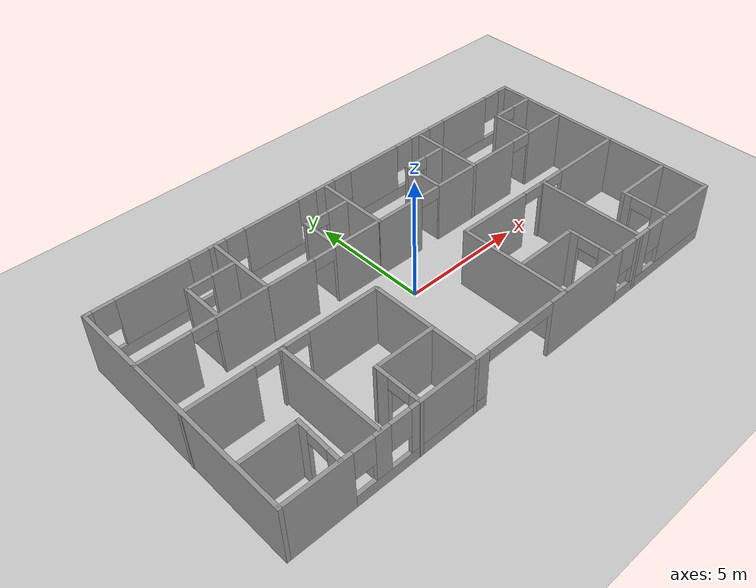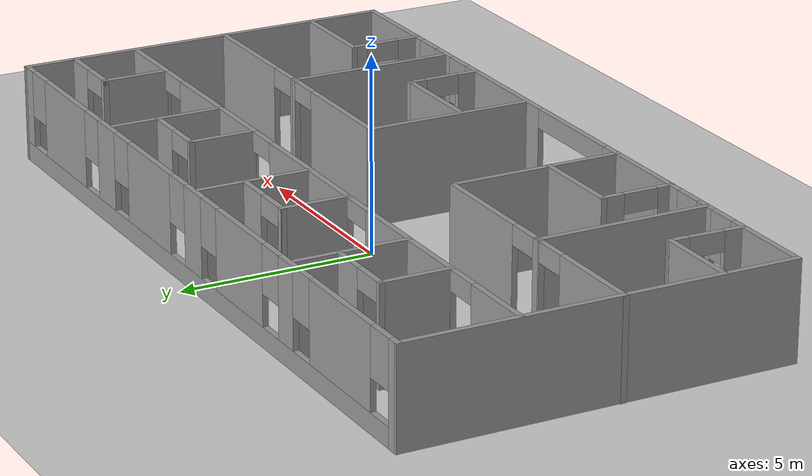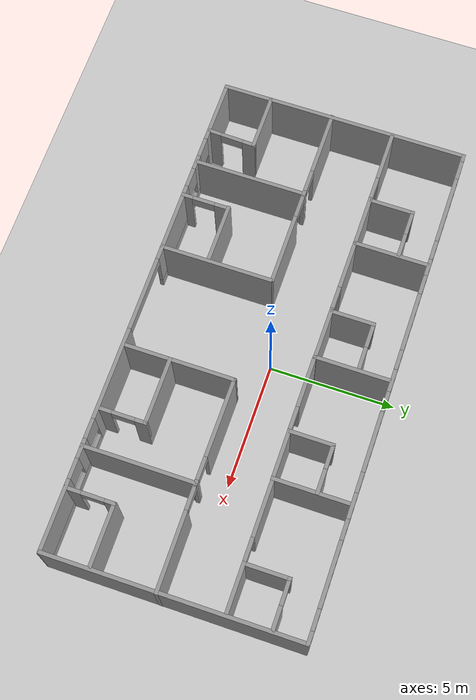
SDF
<sdf version="1.6">
 <world name="default">
  <model name="ground_plane">
   <static>1</static>
   <link name="link">
    <collision name="collision">
     <geometry><plane><normal>0 0 1</normal><size>100 100</size></plane></geometry>
     <surface><friction><ode><mu>100</mu><mu2>50</mu2></ode></friction></surface>
    </collision>
    <visual name="visual">
     <cast_shadows>0</cast_shadows>
     <geometry><plane><normal>0 0 1</normal><size>100 100</size></plane></geometry>
     <material>
      <script><uri>file://media/materials/scripts/gazebo.material</uri><name>Gazebo/Grey</name></script>
     </material>
    </visual>
   </link>
  </model>
  <model name="resthome1_1">
   <pose>-0.062004 -0.275716 0 0 -0 0</pose>
   <link name="Wall_14">
    <pose>-7.47373 1.99162 0 0 -0 0</pose>
    <visual name="Wall_14_Visual_0">
     <pose>-1.4708 0 1.25 0 -0 0</pose>
     <geometry><box><size>2.0584 0.15 2.5</size></box></geometry>
     <material>
      <script><uri>file://media/materials/scripts/gazebo.material</uri><name>Gazebo/Grey</name></script>
      <ambient>1 1 1 1</ambient>
     </material>
    </visual>
    <collision name="Wall_14_Collision_0">
     <geometry><box><size>2.0584 0.15 2.5</size></box></geometry>
     <pose>-1.4708 0 1.25 0 -0 0</pose>
    </collision>
    <visual name="Wall_14_Visual_1">
     <pose>1.4792 0 1.25 0 -0 0</pose>
     <geometry><box><size>2.0416 0.15 2.5</size></box></geometry>
     <material>
      <script><uri>file://media/materials/scripts/gazebo.material</uri><name>Gazebo/Grey</name></script>
      <ambient>1 1 1 1</ambient>
     </material>
    </visual>
    <collision name="Wall_14_Collision_1">
     <geometry><box><size>2.0416 0.15 2.5</size></box></geometry>
     <pose>1.4792 0 1.25 0 -0 0</pose>
    </collision>
    <visual name="Wall_14_Visual_2">
     <pose>0.0084 0 2.25 0 -0 0</pose>
     <geometry><box><size>0.9 0.15 0.5</size></box></geometry>
     <material>
      <script><uri>file://media/materials/scripts/gazebo.material</uri><name>Gazebo/Grey</name></script>
      <ambient>1 1 1 1</ambient>
     </material>
    </visual>
    <collision name="Wall_14_Collision_2">
     <geometry><box><size>0.9 0.15 0.5</size></box></geometry>
     <pose>0.0084 0 2.25 0 -0 0</pose>
    </collision>
   </link>
   <link name="Wall_16">
    <collision name="Wall_16_Collision">
     <geometry><box><size>3 0.15 2.5</size></box></geometry>
     <pose>0 0 1.25 0 -0 0</pose>
    </collision>
    <visual name="Wall_16_Visual">
     <pose>0 0 1.25 0 -0 0</pose>
     <geometry><box><size>3 0.15 2.5</size></box></geometry>
     <material>
      <script><uri>file://media/materials/scripts/gazebo.material</uri><name>Gazebo/Grey</name></script>
      <ambient>1 1 1 1</ambient>
     </material>
    </visual>
    <pose>-4.9711 3.42586 0 0 0 -1.5708</pose>
   </link>
   <link name="Wall_24">
    <pose>-5.97761 3.7102 0 0 -0 0</pose>
    <visual name="Wall_24_Visual_0">
     <pose>-0.936133 0 1.25 0 -0 0</pose>
     <geometry><box><size>0.127734 0.15 2.5</size></box></geometry>
     <material>
      <script><uri>file://media/materials/scripts/gazebo.material</uri><name>Gazebo/Grey</name></script>
      <ambient>1 1 1 1</ambient>
     </material>
    </visual>
    <collision name="Wall_24_Collision_0">
     <geometry><box><size>0.127734 0.15 2.5</size></box></geometry>
     <pose>-0.936133 0 1.25 0 -0 0</pose>
    </collision>
    <visual name="Wall_24_Visual_1">
     <pose>0.513867 0 1.25 0 -0 0</pose>
     <geometry><box><size>0.972266 0.15 2.5</size></box></geometry>
     <material>
      <script><uri>file://media/materials/scripts/gazebo.material</uri><name>Gazebo/Grey</name></script>
      <ambient>1 1 1 1</ambient>
     </material>
    </visual>
    <collision name="Wall_24_Collision_1">
     <geometry><box><size>0.972266 0.15 2.5</size></box></geometry>
     <pose>0.513867 0 1.25 0 -0 0</pose>
    </collision>
    <visual name="Wall_24_Visual_2">
     <pose>-0.422266 0 2.25 0 -0 0</pose>
     <geometry><box><size>0.9 0.15 0.5</size></box></geometry>
     <material>
      <script><uri>file://media/materials/scripts/gazebo.material</uri><name>Gazebo/Grey</name></script>
      <ambient>1 1 1 1</ambient>
     </material>
    </visual>
    <collision name="Wall_24_Collision_2">
     <geometry><box><size>0.9 0.15 0.5</size></box></geometry>
     <pose>-0.422266 0 2.25 0 -0 0</pose>
    </collision>
   </link>
   <link name="Wall_26">
    <collision name="Wall_26_Collision">
     <geometry><box><size>1.75 0.15 2.5</size></box></geometry>
     <pose>0 0 1.25 0 -0 0</pose>
    </collision>
    <visual name="Wall_26_Visual">
     <pose>0 0 1.25 0 -0 0</pose>
     <geometry><box><size>1.75 0.15 2.5</size></box></geometry>
     <material>
      <script><uri>file://media/materials/scripts/gazebo.material</uri><name>Gazebo/Grey</name></script>
      <ambient>1 1 1 1</ambient>
     </material>
    </visual>
    <pose>-6.90261 2.8769 0 0 0 -1.5708</pose>
   </link>
   <link name="Wall_28">
    <pose>-2.49316 1.97557 0 0 0 -0.004147</pose>
    <visual name="Wall_28_Visual_0">
     <pose>-1.52052 0 1.25 0 -0 0</pose>
     <geometry><box><size>1.95897 0.15 2.5</size></box></geometry>
     <material>
      <script><uri>file://media/materials/scripts/gazebo.material</uri><name>Gazebo/Grey</name></script>
      <ambient>1 1 1 1</ambient>
     </material>
    </visual>
    <collision name="Wall_28_Collision_0">
     <geometry><box><size>1.95897 0.15 2.5</size></box></geometry>
     <pose>-1.52052 0 1.25 0 -0 0</pose>
    </collision>
    <visual name="Wall_28_Visual_1">
     <pose>1.42948 0 1.25 0 -0 0</pose>
     <geometry><box><size>2.14103 0.15 2.5</size></box></geometry>
     <material>
      <script><uri>file://media/materials/scripts/gazebo.material</uri><name>Gazebo/Grey</name></script>
      <ambient>1 1 1 1</ambient>
     </material>
    </visual>
    <collision name="Wall_28_Collision_1">
     <geometry><box><size>2.14103 0.15 2.5</size></box></geometry>
     <pose>1.42948 0 1.25 0 -0 0</pose>
    </collision>
    <visual name="Wall_28_Visual_2">
     <pose>-0.091033 0 2.25 0 -0 0</pose>
     <geometry><box><size>0.9 0.15 0.5</size></box></geometry>
     <material>
      <script><uri>file://media/materials/scripts/gazebo.material</uri><name>Gazebo/Grey</name></script>
      <ambient>1 1 1 1</ambient>
     </material>
    </visual>
    <collision name="Wall_28_Collision_2">
     <geometry><box><size>0.9 0.15 0.5</size></box></geometry>
     <pose>-0.091033 0 2.25 0 -0 0</pose>
    </collision>
   </link>
   <link name="Wall_3">
    <pose>0.005963 4.92634 0 0 -0 0.00165</pose>
    <visual name="Wall_3_Visual_0">
     <pose>-9.83255 0 1.25 0 -0 0</pose>
     <geometry><box><size>0.334932 0.15 2.5</size></box></geometry>
     <material>
      <script><uri>file://media/materials/scripts/gazebo.material</uri><name>Gazebo/Grey</name></script>
      <ambient>1 1 1 1</ambient>
     </material>
    </visual>
    <collision name="Wall_3_Collision_0">
     <geometry><box><size>0.334932 0.15 2.5</size></box></geometry>
     <pose>-9.83255 0 1.25 0 -0 0</pose>
    </collision>
    <visual name="Wall_3_Visual_1">
     <pose>0.167466 0 0.25 0 -0 0</pose>
     <geometry><box><size>19.6651 0.15 0.5</size></box></geometry>
     <material>
      <script><uri>file://media/materials/scripts/gazebo.material</uri><name>Gazebo/Grey</name></script>
      <ambient>1 1 1 1</ambient>
     </material>
    </visual>
    <collision name="Wall_3_Collision_1">
     <geometry><box><size>19.6651 0.15 0.5</size></box></geometry>
     <pose>0.167466 0 0.25 0 -0 0</pose>
    </collision>
    <visual name="Wall_3_Visual_2">
     <pose>-7.45661 0 1.5 0 -0 0</pose>
     <geometry><box><size>2.81693 0.15 2</size></box></geometry>
     <material>
      <script><uri>file://media/materials/scripts/gazebo.material</uri><name>Gazebo/Grey</name></script>
      <ambient>1 1 1 1</ambient>
     </material>
    </visual>
    <collision name="Wall_3_Collision_2">
     <geometry><box><size>2.81693 0.15 2</size></box></geometry>
     <pose>-7.45661 0 1.5 0 -0 0</pose>
    </collision>
    <visual name="Wall_3_Visual_3">
     <pose>-4.89389 0 1.5 0 -0 0</pose>
     <geometry><box><size>0.708514 0.15 2</size></box></geometry>
     <material>
      <script><uri>file://media/materials/scripts/gazebo.material</uri><name>Gazebo/Grey</name></script>
      <ambient>1 1 1 1</ambient>
     </material>
    </visual>
    <collision name="Wall_3_Collision_3">
     <geometry><box><size>0.708514 0.15 2</size></box></geometry>
     <pose>-4.89389 0 1.5 0 -0 0</pose>
    </collision>
    <visual name="Wall_3_Visual_4">
     <pose>-2.54776 0 1.5 0 -0 0</pose>
     <geometry><box><size>2.38375 0.15 2</size></box></geometry>
     <material>
      <script><uri>file://media/materials/scripts/gazebo.material</uri><name>Gazebo/Grey</name></script>
      <ambient>1 1 1 1</ambient>
     </material>
    </visual>
    <collision name="Wall_3_Collision_4">
     <geometry><box><size>2.38375 0.15 2</size></box></geometry>
     <pose>-2.54776 0 1.5 0 -0 0</pose>
    </collision>
    <visual name="Wall_3_Visual_5">
     <pose>-0.10317 0 1.5 0 -0 0</pose>
     <geometry><box><size>0.905421 0.15 2</size></box></geometry>
     <material>
      <script><uri>file://media/materials/scripts/gazebo.material</uri><name>Gazebo/Grey</name></script>
      <ambient>1 1 1 1</ambient>
     </material>
    </visual>
    <collision name="Wall_3_Collision_5">
     <geometry><box><size>0.905421 0.15 2</size></box></geometry>
     <pose>-0.10317 0 1.5 0 -0 0</pose>
    </collision>
    <visual name="Wall_3_Visual_6">
     <pose>2.35056 0 1.5 0 -0 0</pose>
     <geometry><box><size>2.40204 0.15 2</size></box></geometry>
     <material>
      <script><uri>file://media/materials/scripts/gazebo.material</uri><name>Gazebo/Grey</name></script>
      <ambient>1 1 1 1</ambient>
     </material>
    </visual>
    <collision name="Wall_3_Collision_6">
     <geometry><box><size>2.40204 0.15 2</size></box></geometry>
     <pose>2.35056 0 1.5 0 -0 0</pose>
    </collision>
    <visual name="Wall_3_Visual_7">
     <pose>4.84703 0 1.5 0 -0 0</pose>
     <geometry><box><size>0.990901 0.15 2</size></box></geometry>
     <material>
      <script><uri>file://media/materials/scripts/gazebo.material</uri><name>Gazebo/Grey</name></script>
      <ambient>1 1 1 1</ambient>
     </material>
    </visual>
    <collision name="Wall_3_Collision_7">
     <geometry><box><size>0.990901 0.15 2</size></box></geometry>
     <pose>4.84703 0 1.5 0 -0 0</pose>
    </collision>
    <visual name="Wall_3_Visual_8">
     <pose>7.40109 0 1.5 0 -0 0</pose>
     <geometry><box><size>2.51722 0.15 2</size></box></geometry>
     <material>
      <script><uri>file://media/materials/scripts/gazebo.material</uri><name>Gazebo/Grey</name></script>
      <ambient>1 1 1 1</ambient>
     </material>
    </visual>
    <collision name="Wall_3_Collision_8">
     <geometry><box><size>2.51722 0.15 2</size></box></geometry>
     <pose>7.40109 0 1.5 0 -0 0</pose>
    </collision>
    <visual name="Wall_3_Visual_9">
     <pose>9.72986 0 1.5 0 -0 0</pose>
     <geometry><box><size>0.540311 0.15 2</size></box></geometry>
     <material>
      <script><uri>file://media/materials/scripts/gazebo.material</uri><name>Gazebo/Grey</name></script>
      <ambient>1 1 1 1</ambient>
     </material>
    </visual>
    <collision name="Wall_3_Collision_9">
     <geometry><box><size>0.540311 0.15 2</size></box></geometry>
     <pose>9.72986 0 1.5 0 -0 0</pose>
    </collision>
    <visual name="Wall_3_Visual_10">
     <pose>-9.26508 0 1.9 0 -0 0</pose>
     <geometry><box><size>0.8 0.15 1.2</size></box></geometry>
     <material>
      <script><uri>file://media/materials/scripts/gazebo.material</uri><name>Gazebo/Grey</name></script>
      <ambient>1 1 1 1</ambient>
     </material>
    </visual>
    <collision name="Wall_3_Collision_10">
     <geometry><box><size>0.8 0.15 1.2</size></box></geometry>
     <pose>-9.26508 0 1.9 0 -0 0</pose>
    </collision>
    <visual name="Wall_3_Visual_11">
     <pose>-5.64815 0 1.9 0 -0 0</pose>
     <geometry><box><size>0.8 0.15 1.2</size></box></geometry>
     <material>
      <script><uri>file://media/materials/scripts/gazebo.material</uri><name>Gazebo/Grey</name></script>
      <ambient>1 1 1 1</ambient>
     </material>
    </visual>
    <collision name="Wall_3_Collision_11">
     <geometry><box><size>0.8 0.15 1.2</size></box></geometry>
     <pose>-5.64815 0 1.9 0 -0 0</pose>
    </collision>
    <visual name="Wall_3_Visual_12">
     <pose>-4.13963 0 1.9 0 -0 0</pose>
     <geometry><box><size>0.8 0.15 1.2</size></box></geometry>
     <material>
      <script><uri>file://media/materials/scripts/gazebo.material</uri><name>Gazebo/Grey</name></script>
      <ambient>1 1 1 1</ambient>
     </material>
    </visual>
    <collision name="Wall_3_Collision_12">
     <geometry><box><size>0.8 0.15 1.2</size></box></geometry>
     <pose>-4.13963 0 1.9 0 -0 0</pose>
    </collision>
    <visual name="Wall_3_Visual_13">
     <pose>-0.95588 0 1.9 0 -0 0</pose>
     <geometry><box><size>0.8 0.15 1.2</size></box></geometry>
     <material>
      <script><uri>file://media/materials/scripts/gazebo.material</uri><name>Gazebo/Grey</name></script>
      <ambient>1 1 1 1</ambient>
     </material>
    </visual>
    <collision name="Wall_3_Collision_13">
     <geometry><box><size>0.8 0.15 1.2</size></box></geometry>
     <pose>-0.95588 0 1.9 0 -0 0</pose>
    </collision>
    <visual name="Wall_3_Visual_14">
     <pose>0.749541 0 1.9 0 -0 0</pose>
     <geometry><box><size>0.8 0.15 1.2</size></box></geometry>
     <material>
      <script><uri>file://media/materials/scripts/gazebo.material</uri><name>Gazebo/Grey</name></script>
      <ambient>1 1 1 1</ambient>
     </material>
    </visual>
    <collision name="Wall_3_Collision_14">
     <geometry><box><size>0.8 0.15 1.2</size></box></geometry>
     <pose>0.749541 0 1.9 0 -0 0</pose>
    </collision>
    <visual name="Wall_3_Visual_15">
     <pose>3.95158 0 1.9 0 -0 0</pose>
     <geometry><box><size>0.8 0.15 1.2</size></box></geometry>
     <material>
      <script><uri>file://media/materials/scripts/gazebo.material</uri><name>Gazebo/Grey</name></script>
      <ambient>1 1 1 1</ambient>
     </material>
    </visual>
    <collision name="Wall_3_Collision_15">
     <geometry><box><size>0.8 0.15 1.2</size></box></geometry>
     <pose>3.95158 0 1.9 0 -0 0</pose>
    </collision>
    <visual name="Wall_3_Visual_16">
     <pose>5.74248 0 1.9 0 -0 0</pose>
     <geometry><box><size>0.8 0.15 1.2</size></box></geometry>
     <material>
      <script><uri>file://media/materials/scripts/gazebo.material</uri><name>Gazebo/Grey</name></script>
      <ambient>1 1 1 1</ambient>
     </material>
    </visual>
    <collision name="Wall_3_Collision_16">
     <geometry><box><size>0.8 0.15 1.2</size></box></geometry>
     <pose>5.74248 0 1.9 0 -0 0</pose>
    </collision>
    <visual name="Wall_3_Visual_17">
     <pose>9.0597 0 1.9 0 -0 0</pose>
     <geometry><box><size>0.8 0.15 1.2</size></box></geometry>
     <material>
      <script><uri>file://media/materials/scripts/gazebo.material</uri><name>Gazebo/Grey</name></script>
      <ambient>1 1 1 1</ambient>
     </material>
    </visual>
    <collision name="Wall_3_Collision_17">
     <geometry><box><size>0.8 0.15 1.2</size></box></geometry>
     <pose>9.0597 0 1.9 0 -0 0</pose>
    </collision>
   </link>
   <link name="Wall_30">
    <collision name="Wall_30_Collision">
     <geometry><box><size>3 0.15 2.5</size></box></geometry>
     <pose>0 0 1.25 0 -0 0</pose>
    </collision>
    <visual name="Wall_30_Visual">
     <pose>0 0 1.25 0 -0 0</pose>
     <geometry><box><size>3 0.15 2.5</size></box></geometry>
     <material>
      <script><uri>file://media/materials/scripts/gazebo.material</uri><name>Gazebo/Grey</name></script>
      <ambient>1 1 1 1</ambient>
     </material>
    </visual>
    <pose>-0.068165 3.39051 0 0 -0 1.5708</pose>
   </link>
   <link name="Wall_32">
    <pose>-1.07625 3.63494 0 0 -0 3.14159</pose>
    <visual name="Wall_32_Visual_0">
     <pose>-0.519401 0 1.25 0 -0 0</pose>
     <geometry><box><size>0.961198 0.15 2.5</size></box></geometry>
     <material>
      <script><uri>file://media/materials/scripts/gazebo.material</uri><name>Gazebo/Grey</name></script>
      <ambient>1 1 1 1</ambient>
     </material>
    </visual>
    <collision name="Wall_32_Collision_0">
     <geometry><box><size>0.961198 0.15 2.5</size></box></geometry>
     <pose>-0.519401 0 1.25 0 -0 0</pose>
    </collision>
    <visual name="Wall_32_Visual_1">
     <pose>0.930599 0 1.25 0 -0 0</pose>
     <geometry><box><size>0.138802 0.15 2.5</size></box></geometry>
     <material>
      <script><uri>file://media/materials/scripts/gazebo.material</uri><name>Gazebo/Grey</name></script>
      <ambient>1 1 1 1</ambient>
     </material>
    </visual>
    <collision name="Wall_32_Collision_1">
     <geometry><box><size>0.138802 0.15 2.5</size></box></geometry>
     <pose>0.930599 0 1.25 0 -0 0</pose>
    </collision>
    <visual name="Wall_32_Visual_2">
     <pose>0.411198 0 2.25 0 -0 0</pose>
     <geometry><box><size>0.9 0.15 0.5</size></box></geometry>
     <material>
      <script><uri>file://media/materials/scripts/gazebo.material</uri><name>Gazebo/Grey</name></script>
      <ambient>1 1 1 1</ambient>
     </material>
    </visual>
    <collision name="Wall_32_Collision_2">
     <geometry><box><size>0.9 0.15 0.5</size></box></geometry>
     <pose>0.411198 0 2.25 0 -0 0</pose>
    </collision>
   </link>
   <link name="Wall_34">
    <collision name="Wall_34_Collision">
     <geometry><box><size>1.75 0.15 2.5</size></box></geometry>
     <pose>0 0 1.25 0 -0 0</pose>
    </collision>
    <visual name="Wall_34_Visual">
     <pose>0 0 1.25 0 -0 0</pose>
     <geometry><box><size>1.75 0.15 2.5</size></box></geometry>
     <material>
      <script><uri>file://media/materials/scripts/gazebo.material</uri><name>Gazebo/Grey</name></script>
      <ambient>1 1 1 1</ambient>
     </material>
    </visual>
    <pose>-2.00125 2.83494 0 0 0 -1.5708</pose>
   </link>
   <link name="Wall_36">
    <pose>2.38239 1.95177 0 0 -0 0</pose>
    <visual name="Wall_36_Visual_0">
     <pose>-1.45559 0 1.25 0 -0 0</pose>
     <geometry><box><size>2.08882 0.15 2.5</size></box></geometry>
     <material>
      <script><uri>file://media/materials/scripts/gazebo.material</uri><name>Gazebo/Grey</name></script>
      <ambient>1 1 1 1</ambient>
     </material>
    </visual>
    <collision name="Wall_36_Collision_0">
     <geometry><box><size>2.08882 0.15 2.5</size></box></geometry>
     <pose>-1.45559 0 1.25 0 -0 0</pose>
    </collision>
    <visual name="Wall_36_Visual_1">
     <pose>1.49441 0 1.25 0 -0 0</pose>
     <geometry><box><size>2.01118 0.15 2.5</size></box></geometry>
     <material>
      <script><uri>file://media/materials/scripts/gazebo.material</uri><name>Gazebo/Grey</name></script>
      <ambient>1 1 1 1</ambient>
     </material>
    </visual>
    <collision name="Wall_36_Collision_1">
     <geometry><box><size>2.01118 0.15 2.5</size></box></geometry>
     <pose>1.49441 0 1.25 0 -0 0</pose>
    </collision>
    <visual name="Wall_36_Visual_2">
     <pose>0.038817 0 2.25 0 -0 0</pose>
     <geometry><box><size>0.9 0.15 0.5</size></box></geometry>
     <material>
      <script><uri>file://media/materials/scripts/gazebo.material</uri><name>Gazebo/Grey</name></script>
      <ambient>1 1 1 1</ambient>
     </material>
    </visual>
    <collision name="Wall_36_Collision_2">
     <geometry><box><size>0.9 0.15 0.5</size></box></geometry>
     <pose>0.038817 0 2.25 0 -0 0</pose>
    </collision>
   </link>
   <link name="Wall_38">
    <collision name="Wall_38_Collision">
     <geometry><box><size>3 0.15 2.5</size></box></geometry>
     <pose>0 0 1.25 0 -0 0</pose>
    </collision>
    <visual name="Wall_38_Visual">
     <pose>0 0 1.25 0 -0 0</pose>
     <geometry><box><size>3 0.15 2.5</size></box></geometry>
     <material>
      <script><uri>file://media/materials/scripts/gazebo.material</uri><name>Gazebo/Grey</name></script>
      <ambient>1 1 1 1</ambient>
     </material>
    </visual>
    <pose>4.80738 3.37677 0 0 -0 1.5708</pose>
   </link>
   <link name="Wall_40">
    <pose>3.86877 3.62473 0 0 -0 3.14159</pose>
    <visual name="Wall_40_Visual_0">
     <pose>-0.503106 0 1.25 0 -0 0</pose>
     <geometry><box><size>0.993788 0.15 2.5</size></box></geometry>
     <material>
      <script><uri>file://media/materials/scripts/gazebo.material</uri><name>Gazebo/Grey</name></script>
      <ambient>1 1 1 1</ambient>
     </material>
    </visual>
    <collision name="Wall_40_Collision_0">
     <geometry><box><size>0.993788 0.15 2.5</size></box></geometry>
     <pose>-0.503106 0 1.25 0 -0 0</pose>
    </collision>
    <visual name="Wall_40_Visual_1">
     <pose>0.946894 0 1.25 0 -0 0</pose>
     <geometry><box><size>0.106212 0.15 2.5</size></box></geometry>
     <material>
      <script><uri>file://media/materials/scripts/gazebo.material</uri><name>Gazebo/Grey</name></script>
      <ambient>1 1 1 1</ambient>
     </material>
    </visual>
    <collision name="Wall_40_Collision_1">
     <geometry><box><size>0.106212 0.15 2.5</size></box></geometry>
     <pose>0.946894 0 1.25 0 -0 0</pose>
    </collision>
    <visual name="Wall_40_Visual_2">
     <pose>0.443788 0 2.25 0 -0 0</pose>
     <geometry><box><size>0.9 0.15 0.5</size></box></geometry>
     <material>
      <script><uri>file://media/materials/scripts/gazebo.material</uri><name>Gazebo/Grey</name></script>
      <ambient>1 1 1 1</ambient>
     </material>
    </visual>
    <collision name="Wall_40_Collision_2">
     <geometry><box><size>0.9 0.15 0.5</size></box></geometry>
     <pose>0.443788 0 2.25 0 -0 0</pose>
    </collision>
   </link>
   <link name="Wall_41">
    <collision name="Wall_41_Collision">
     <geometry><box><size>1.75 0.15 2.5</size></box></geometry>
     <pose>0 0 1.25 0 -0 0</pose>
    </collision>
    <visual name="Wall_41_Visual">
     <pose>0 0 1.25 0 -0 0</pose>
     <geometry><box><size>1.75 0.15 2.5</size></box></geometry>
     <material>
      <script><uri>file://media/materials/scripts/gazebo.material</uri><name>Gazebo/Grey</name></script>
      <ambient>1 1 1 1</ambient>
     </material>
    </visual>
    <pose>2.94377 2.82473 0 0 0 -1.5708</pose>
   </link>
   <link name="Wall_43">
    <pose>7.37031 1.96098 0 0 -0 0</pose>
    <visual name="Wall_43_Visual_0">
     <pose>-1.4125 0 1.25 0 -0 0</pose>
     <geometry><box><size>2.175 0.15 2.5</size></box></geometry>
     <material>
      <script><uri>file://media/materials/scripts/gazebo.material</uri><name>Gazebo/Grey</name></script>
      <ambient>1 1 1 1</ambient>
     </material>
    </visual>
    <collision name="Wall_43_Collision_0">
     <geometry><box><size>2.175 0.15 2.5</size></box></geometry>
     <pose>-1.4125 0 1.25 0 -0 0</pose>
    </collision>
    <visual name="Wall_43_Visual_1">
     <pose>1.5375 0 1.25 0 -0 0</pose>
     <geometry><box><size>1.925 0.15 2.5</size></box></geometry>
     <material>
      <script><uri>file://media/materials/scripts/gazebo.material</uri><name>Gazebo/Grey</name></script>
      <ambient>1 1 1 1</ambient>
     </material>
    </visual>
    <collision name="Wall_43_Collision_1">
     <geometry><box><size>1.925 0.15 2.5</size></box></geometry>
     <pose>1.5375 0 1.25 0 -0 0</pose>
    </collision>
    <visual name="Wall_43_Visual_2">
     <pose>0.125 0 2.25 0 -0 0</pose>
     <geometry><box><size>0.9 0.15 0.5</size></box></geometry>
     <material>
      <script><uri>file://media/materials/scripts/gazebo.material</uri><name>Gazebo/Grey</name></script>
      <ambient>1 1 1 1</ambient>
     </material>
    </visual>
    <collision name="Wall_43_Collision_2">
     <geometry><box><size>0.9 0.15 0.5</size></box></geometry>
     <pose>0.125 0 2.25 0 -0 0</pose>
    </collision>
   </link>
   <link name="Wall_45">
    <pose>8.94031 3.65098 0 0 -0 3.14159</pose>
    <visual name="Wall_45_Visual_0">
     <pose>-0.5225 0 1.25 0 -0 0</pose>
     <geometry><box><size>0.955 0.15 2.5</size></box></geometry>
     <material>
      <script><uri>file://media/materials/scripts/gazebo.material</uri><name>Gazebo/Grey</name></script>
      <ambient>1 1 1 1</ambient>
     </material>
    </visual>
    <collision name="Wall_45_Collision_0">
     <geometry><box><size>0.955 0.15 2.5</size></box></geometry>
     <pose>-0.5225 0 1.25 0 -0 0</pose>
    </collision>
    <visual name="Wall_45_Visual_1">
     <pose>0.9275 0 1.25 0 -0 0</pose>
     <geometry><box><size>0.145 0.15 2.5</size></box></geometry>
     <material>
      <script><uri>file://media/materials/scripts/gazebo.material</uri><name>Gazebo/Grey</name></script>
      <ambient>1 1 1 1</ambient>
     </material>
    </visual>
    <collision name="Wall_45_Collision_1">
     <geometry><box><size>0.145 0.15 2.5</size></box></geometry>
     <pose>0.9275 0 1.25 0 -0 0</pose>
    </collision>
    <visual name="Wall_45_Visual_2">
     <pose>0.405 0 2.25 0 -0 0</pose>
     <geometry><box><size>0.9 0.15 0.5</size></box></geometry>
     <material>
      <script><uri>file://media/materials/scripts/gazebo.material</uri><name>Gazebo/Grey</name></script>
      <ambient>1 1 1 1</ambient>
     </material>
    </visual>
    <collision name="Wall_45_Collision_2">
     <geometry><box><size>0.9 0.15 0.5</size></box></geometry>
     <pose>0.405 0 2.25 0 -0 0</pose>
    </collision>
   </link>
   <link name="Wall_46">
    <collision name="Wall_46_Collision">
     <geometry><box><size>1.75 0.15 2.5</size></box></geometry>
     <pose>0 0 1.25 0 -0 0</pose>
    </collision>
    <visual name="Wall_46_Visual">
     <pose>0 0 1.25 0 -0 0</pose>
     <geometry><box><size>1.75 0.15 2.5</size></box></geometry>
     <material>
      <script><uri>file://media/materials/scripts/gazebo.material</uri><name>Gazebo/Grey</name></script>
      <ambient>1 1 1 1</ambient>
     </material>
    </visual>
    <pose>8.01531 2.85098 0 0 0 -1.5708</pose>
   </link>
   <link name="Wall_50">
    <collision name="Wall_50_Collision">
     <geometry><box><size>10 0.15 2.5</size></box></geometry>
     <pose>0 0 1.25 0 -0 0</pose>
    </collision>
    <visual name="Wall_50_Visual">
     <pose>0 0 1.25 0 -0 0</pose>
     <geometry><box><size>10 0.15 2.5</size></box></geometry>
     <material>
      <script><uri>file://media/materials/scripts/gazebo.material</uri><name>Gazebo/Grey</name></script>
      <ambient>1 1 1 1</ambient>
     </material>
    </visual>
    <pose>-9.91922 -0.015034 0 0 0 -1.5708</pose>
   </link>
   <link name="Wall_52">
    <collision name="Wall_52_Collision">
     <geometry><box><size>10 0.15 2.5</size></box></geometry>
     <pose>0 0 1.25 0 -0 0</pose>
    </collision>
    <visual name="Wall_52_Visual">
     <pose>0 0 1.25 0 -0 0</pose>
     <geometry><box><size>10 0.15 2.5</size></box></geometry>
     <material>
      <script><uri>file://media/materials/scripts/gazebo.material</uri><name>Gazebo/Grey</name></script>
      <ambient>1 1 1 1</ambient>
     </material>
    </visual>
    <pose>9.93114 0.017719 0 0 0 -1.5708</pose>
   </link>
   <link name="Wall_56">
    <pose>0.005783 -4.94003 0 0 -0 0</pose>
    <visual name="Wall_56_Visual_0">
     <pose>-8.70721 0 1.25 0 -0 0</pose>
     <geometry><box><size>2.58559 0.15 2.5</size></box></geometry>
     <material>
      <script><uri>file://media/materials/scripts/gazebo.material</uri><name>Gazebo/Grey</name></script>
      <ambient>1 1 1 1</ambient>
     </material>
    </visual>
    <collision name="Wall_56_Collision_0">
     <geometry><box><size>2.58559 0.15 2.5</size></box></geometry>
     <pose>-8.70721 0 1.25 0 -0 0</pose>
    </collision>
    <visual name="Wall_56_Visual_1">
     <pose>2.91559 0 1.25 0 -0 0</pose>
     <geometry><box><size>3.7 0.15 2.5</size></box></geometry>
     <material>
      <script><uri>file://media/materials/scripts/gazebo.material</uri><name>Gazebo/Grey</name></script>
      <ambient>1 1 1 1</ambient>
     </material>
    </visual>
    <collision name="Wall_56_Collision_1">
     <geometry><box><size>3.7 0.15 2.5</size></box></geometry>
     <pose>2.91559 0 1.25 0 -0 0</pose>
    </collision>
    <visual name="Wall_56_Visual_2">
     <pose>-4.67441 0 0.25 0 -0 0</pose>
     <geometry><box><size>5.48 0.15 0.5</size></box></geometry>
     <material>
      <script><uri>file://media/materials/scripts/gazebo.material</uri><name>Gazebo/Grey</name></script>
      <ambient>1 1 1 1</ambient>
     </material>
    </visual>
    <collision name="Wall_56_Collision_2">
     <geometry><box><size>5.48 0.15 0.5</size></box></geometry>
     <pose>-4.67441 0 0.25 0 -0 0</pose>
    </collision>
    <visual name="Wall_56_Visual_3">
     <pose>7.3828 0 0.25 0 -0 0</pose>
     <geometry><box><size>5.23441 0.15 0.5</size></box></geometry>
     <material>
      <script><uri>file://media/materials/scripts/gazebo.material</uri><name>Gazebo/Grey</name></script>
      <ambient>1 1 1 1</ambient>
     </material>
    </visual>
    <collision name="Wall_56_Collision_3">
     <geometry><box><size>5.23441 0.15 0.5</size></box></geometry>
     <pose>7.3828 0 0.25 0 -0 0</pose>
    </collision>
    <visual name="Wall_56_Visual_4">
     <pose>-6.31441 0 1.5 0 -0 0</pose>
     <geometry><box><size>0.6 0.15 2</size></box></geometry>
     <material>
      <script><uri>file://media/materials/scripts/gazebo.material</uri><name>Gazebo/Grey</name></script>
      <ambient>1 1 1 1</ambient>
     </material>
    </visual>
    <collision name="Wall_56_Collision_4">
     <geometry><box><size>0.6 0.15 2</size></box></geometry>
     <pose>-6.31441 0 1.5 0 -0 0</pose>
    </collision>
    <visual name="Wall_56_Visual_5">
     <pose>-3.57441 0 1.5 0 -0 0</pose>
     <geometry><box><size>3.28 0.15 2</size></box></geometry>
     <material>
      <script><uri>file://media/materials/scripts/gazebo.material</uri><name>Gazebo/Grey</name></script>
      <ambient>1 1 1 1</ambient>
     </material>
    </visual>
    <collision name="Wall_56_Collision_5">
     <geometry><box><size>3.28 0.15 2</size></box></geometry>
     <pose>-3.57441 0 1.5 0 -0 0</pose>
    </collision>
    <visual name="Wall_56_Visual_6">
     <pose>-3.57441 0 1.5 0 -0 0</pose>
     <geometry><box><size>3.28 0.15 2</size></box></geometry>
     <material>
      <script><uri>file://media/materials/scripts/gazebo.material</uri><name>Gazebo/Grey</name></script>
      <ambient>1 1 1 1</ambient>
     </material>
    </visual>
    <collision name="Wall_56_Collision_6">
     <geometry><box><size>3.28 0.15 2</size></box></geometry>
     <pose>-3.57441 0 1.5 0 -0 0</pose>
    </collision>
    <visual name="Wall_56_Visual_7">
     <pose>5.95559 0 1.5 0 -0 0</pose>
     <geometry><box><size>0.78 0.15 2</size></box></geometry>
     <material>
      <script><uri>file://media/materials/scripts/gazebo.material</uri><name>Gazebo/Grey</name></script>
      <ambient>1 1 1 1</ambient>
     </material>
    </visual>
    <collision name="Wall_56_Collision_7">
     <geometry><box><size>0.78 0.15 2</size></box></geometry>
     <pose>5.95559 0 1.5 0 -0 0</pose>
    </collision>
    <visual name="Wall_56_Visual_8">
     <pose>8.5728 0 1.5 0 -0 0</pose>
     <geometry><box><size>2.85441 0.15 2</size></box></geometry>
     <material>
      <script><uri>file://media/materials/scripts/gazebo.material</uri><name>Gazebo/Grey</name></script>
      <ambient>1 1 1 1</ambient>
     </material>
    </visual>
    <collision name="Wall_56_Collision_8">
     <geometry><box><size>2.85441 0.15 2</size></box></geometry>
     <pose>8.5728 0 1.5 0 -0 0</pose>
    </collision>
    <visual name="Wall_56_Visual_9">
     <pose>-7.01441 0 1.9 0 -0 0</pose>
     <geometry><box><size>0.8 0.15 1.2</size></box></geometry>
     <material>
      <script><uri>file://media/materials/scripts/gazebo.material</uri><name>Gazebo/Grey</name></script>
      <ambient>1 1 1 1</ambient>
     </material>
    </visual>
    <collision name="Wall_56_Collision_9">
     <geometry><box><size>0.8 0.15 1.2</size></box></geometry>
     <pose>-7.01441 0 1.9 0 -0 0</pose>
    </collision>
    <visual name="Wall_56_Visual_10">
     <pose>5.16559 0 1.9 0 -0 0</pose>
     <geometry><box><size>0.8 0.15 1.2</size></box></geometry>
     <material>
      <script><uri>file://media/materials/scripts/gazebo.material</uri><name>Gazebo/Grey</name></script>
      <ambient>1 1 1 1</ambient>
     </material>
    </visual>
    <collision name="Wall_56_Collision_10">
     <geometry><box><size>0.8 0.15 1.2</size></box></geometry>
     <pose>5.16559 0 1.9 0 -0 0</pose>
    </collision>
    <visual name="Wall_56_Visual_11">
     <pose>-5.61441 0 1.9 0 -0 0</pose>
     <geometry><box><size>0.8 0.15 1.2</size></box></geometry>
     <material>
      <script><uri>file://media/materials/scripts/gazebo.material</uri><name>Gazebo/Grey</name></script>
      <ambient>1 1 1 1</ambient>
     </material>
    </visual>
    <collision name="Wall_56_Collision_11">
     <geometry><box><size>0.8 0.15 1.2</size></box></geometry>
     <pose>-5.61441 0 1.9 0 -0 0</pose>
    </collision>
    <visual name="Wall_56_Visual_12">
     <pose>6.74559 0 1.9 0 -0 0</pose>
     <geometry><box><size>0.8 0.15 1.2</size></box></geometry>
     <material>
      <script><uri>file://media/materials/scripts/gazebo.material</uri><name>Gazebo/Grey</name></script>
      <ambient>1 1 1 1</ambient>
     </material>
    </visual>
    <collision name="Wall_56_Collision_12">
     <geometry><box><size>0.8 0.15 1.2</size></box></geometry>
     <pose>6.74559 0 1.9 0 -0 0</pose>
    </collision>
    <visual name="Wall_56_Visual_13">
     <pose>-0.434409 0 2.25 0 -0 0</pose>
     <geometry><box><size>3 0.15 0.5</size></box></geometry>
     <material>
      <script><uri>file://media/materials/scripts/gazebo.material</uri><name>Gazebo/Grey</name></script>
      <ambient>1 1 1 1</ambient>
     </material>
    </visual>
    <collision name="Wall_56_Collision_13">
     <geometry><box><size>3 0.15 0.5</size></box></geometry>
     <pose>-0.434409 0 2.25 0 -0 0</pose>
    </collision>
    <visual name="Wall_56_Visual_14">
     <pose>-0.434409 0 2.25 0 -0 0</pose>
     <geometry><box><size>3 0.15 0.5</size></box></geometry>
     <material>
      <script><uri>file://media/materials/scripts/gazebo.material</uri><name>Gazebo/Grey</name></script>
      <ambient>1 1 1 1</ambient>
     </material>
    </visual>
    <collision name="Wall_56_Collision_14">
     <geometry><box><size>3 0.15 0.5</size></box></geometry>
     <pose>-0.434409 0 2.25 0 -0 0</pose>
    </collision>
   </link>
   <link name="Wall_58">
    <pose>-8.14174 -0.522095 0 0 -0 0</pose>
    <visual name="Wall_58_Visual_0">
     <pose>-0.559641 0 1.25 0 -0 0</pose>
     <geometry><box><size>2.63072 0.15 2.5</size></box></geometry>
     <material>
      <script><uri>file://media/materials/scripts/gazebo.material</uri><name>Gazebo/Grey</name></script>
      <ambient>1 1 1 1</ambient>
     </material>
    </visual>
    <collision name="Wall_58_Collision_0">
     <geometry><box><size>2.63072 0.15 2.5</size></box></geometry>
     <pose>-0.559641 0 1.25 0 -0 0</pose>
    </collision>
    <visual name="Wall_58_Visual_1">
     <pose>1.76536 0 1.25 0 -0 0</pose>
     <geometry><box><size>0.219282 0.15 2.5</size></box></geometry>
     <material>
      <script><uri>file://media/materials/scripts/gazebo.material</uri><name>Gazebo/Grey</name></script>
      <ambient>1 1 1 1</ambient>
     </material>
    </visual>
    <collision name="Wall_58_Collision_1">
     <geometry><box><size>0.219282 0.15 2.5</size></box></geometry>
     <pose>1.76536 0 1.25 0 -0 0</pose>
    </collision>
    <visual name="Wall_58_Visual_2">
     <pose>1.20572 0 2.25 0 -0 0</pose>
     <geometry><box><size>0.9 0.15 0.5</size></box></geometry>
     <material>
      <script><uri>file://media/materials/scripts/gazebo.material</uri><name>Gazebo/Grey</name></script>
      <ambient>1 1 1 1</ambient>
     </material>
    </visual>
    <collision name="Wall_58_Collision_2">
     <geometry><box><size>0.9 0.15 0.5</size></box></geometry>
     <pose>1.20572 0 2.25 0 -0 0</pose>
    </collision>
   </link>
   <link name="Wall_59">
    <collision name="Wall_59_Collision">
     <geometry><box><size>4.5 0.15 2.5</size></box></geometry>
     <pose>0 0 1.25 0 -0 0</pose>
    </collision>
    <visual name="Wall_59_Visual">
     <pose>0 0 1.25 0 -0 0</pose>
     <geometry><box><size>4.5 0.15 2.5</size></box></geometry>
     <material>
      <script><uri>file://media/materials/scripts/gazebo.material</uri><name>Gazebo/Grey</name></script>
      <ambient>1 1 1 1</ambient>
     </material>
    </visual>
    <pose>-6.34174 -2.6971 0 0 0 -1.5708</pose>
   </link>
   <link name="Wall_72">
    <pose>-4.43674 -0.522095 0 0 -0 3.14159</pose>
    <visual name="Wall_72_Visual_0">
     <pose>-0.559058 0 1.25 0 -0 0</pose>
     <geometry><box><size>2.88188 0.15 2.5</size></box></geometry>
     <material>
      <script><uri>file://media/materials/scripts/gazebo.material</uri><name>Gazebo/Grey</name></script>
      <ambient>1 1 1 1</ambient>
     </material>
    </visual>
    <collision name="Wall_72_Collision_0">
     <geometry><box><size>2.88188 0.15 2.5</size></box></geometry>
     <pose>-0.559058 0 1.25 0 -0 0</pose>
    </collision>
    <visual name="Wall_72_Visual_1">
     <pose>1.89094 0 1.25 0 -0 0</pose>
     <geometry><box><size>0.218116 0.15 2.5</size></box></geometry>
     <material>
      <script><uri>file://media/materials/scripts/gazebo.material</uri><name>Gazebo/Grey</name></script>
      <ambient>1 1 1 1</ambient>
     </material>
    </visual>
    <collision name="Wall_72_Collision_1">
     <geometry><box><size>0.218116 0.15 2.5</size></box></geometry>
     <pose>1.89094 0 1.25 0 -0 0</pose>
    </collision>
    <visual name="Wall_72_Visual_2">
     <pose>1.33188 0 2.25 0 -0 0</pose>
     <geometry><box><size>0.9 0.15 0.5</size></box></geometry>
     <material>
      <script><uri>file://media/materials/scripts/gazebo.material</uri><name>Gazebo/Grey</name></script>
      <ambient>1 1 1 1</ambient>
     </material>
    </visual>
    <collision name="Wall_72_Collision_2">
     <geometry><box><size>0.9 0.15 0.5</size></box></geometry>
     <pose>1.33188 0 2.25 0 -0 0</pose>
    </collision>
   </link>
   <link name="Wall_74">
    <collision name="Wall_74_Collision">
     <geometry><box><size>4.5 0.15 2.5</size></box></geometry>
     <pose>0 0 1.25 0 -0 0</pose>
    </collision>
    <visual name="Wall_74_Visual">
     <pose>0 0 1.25 0 -0 0</pose>
     <geometry><box><size>4.5 0.15 2.5</size></box></geometry>
     <material>
      <script><uri>file://media/materials/scripts/gazebo.material</uri><name>Gazebo/Grey</name></script>
      <ambient>1 1 1 1</ambient>
     </material>
    </visual>
    <pose>-2.46863 -2.76784 0 0 -0 1.5708</pose>
   </link>
   <link name="Wall_76">
    <collision name="Wall_76_Collision">
     <geometry><box><size>2.25 0.15 2.5</size></box></geometry>
     <pose>0 0 1.25 0 -0 0</pose>
    </collision>
    <visual name="Wall_76_Visual">
     <pose>0 0 1.25 0 -0 0</pose>
     <geometry><box><size>2.25 0.15 2.5</size></box></geometry>
     <material>
      <script><uri>file://media/materials/scripts/gazebo.material</uri><name>Gazebo/Grey</name></script>
      <ambient>1 1 1 1</ambient>
     </material>
    </visual>
    <pose>-8.81863 -3.06284 0 0 -0 0</pose>
   </link>
   <link name="Wall_77">
    <pose>-7.77863 -3.97784 0 0 0 -1.60357</pose>
    <visual name="Wall_77_Visual_0">
     <pose>-0.723771 0 1.25 0 -0 0</pose>
     <geometry><box><size>0.532895 0.15 2.5</size></box></geometry>
     <material>
      <script><uri>file://media/materials/scripts/gazebo.material</uri><name>Gazebo/Grey</name></script>
      <ambient>1 1 1 1</ambient>
     </material>
    </visual>
    <collision name="Wall_77_Collision_0">
     <geometry><box><size>0.532895 0.15 2.5</size></box></geometry>
     <pose>-0.723771 0 1.25 0 -0 0</pose>
    </collision>
    <visual name="Wall_77_Visual_1">
     <pose>0.716447 0 1.25 0 -0 0</pose>
     <geometry><box><size>0.547542 0.15 2.5</size></box></geometry>
     <material>
      <script><uri>file://media/materials/scripts/gazebo.material</uri><name>Gazebo/Grey</name></script>
      <ambient>1 1 1 1</ambient>
     </material>
    </visual>
    <collision name="Wall_77_Collision_1">
     <geometry><box><size>0.547542 0.15 2.5</size></box></geometry>
     <pose>0.716447 0 1.25 0 -0 0</pose>
    </collision>
    <visual name="Wall_77_Visual_2">
     <pose>-0.007324 0 2.25 0 -0 0</pose>
     <geometry><box><size>0.9 0.15 0.5</size></box></geometry>
     <material>
      <script><uri>file://media/materials/scripts/gazebo.material</uri><name>Gazebo/Grey</name></script>
      <ambient>1 1 1 1</ambient>
     </material>
    </visual>
    <collision name="Wall_77_Collision_2">
     <geometry><box><size>0.9 0.15 0.5</size></box></geometry>
     <pose>-0.007324 0 2.25 0 -0 0</pose>
    </collision>
   </link>
   <link name="Wall_79">
    <collision name="Wall_79_Collision">
     <geometry><box><size>2.5 0.15 2.5</size></box></geometry>
     <pose>0 0 1.25 0 -0 0</pose>
    </collision>
    <visual name="Wall_79_Visual">
     <pose>0 0 1.25 0 -0 0</pose>
     <geometry><box><size>2.5 0.15 2.5</size></box></geometry>
     <material>
      <script><uri>file://media/materials/scripts/gazebo.material</uri><name>Gazebo/Grey</name></script>
      <ambient>1 1 1 1</ambient>
     </material>
    </visual>
    <pose>-3.65363 -3.09284 0 0 -0 3.14159</pose>
   </link>
   <link name="Wall_80">
    <pose>-4.80863 -4.01784 0 0 0 -1.5708</pose>
    <visual name="Wall_80_Visual_0">
     <pose>-0.6843 0 1.25 0 -0 0</pose>
     <geometry><box><size>0.6314 0.15 2.5</size></box></geometry>
     <material>
      <script><uri>file://media/materials/scripts/gazebo.material</uri><name>Gazebo/Grey</name></script>
      <ambient>1 1 1 1</ambient>
     </material>
    </visual>
    <collision name="Wall_80_Collision_0">
     <geometry><box><size>0.6314 0.15 2.5</size></box></geometry>
     <pose>-0.6843 0 1.25 0 -0 0</pose>
    </collision>
    <visual name="Wall_80_Visual_1">
     <pose>0.7657 0 1.25 0 -0 0</pose>
     <geometry><box><size>0.4686 0.15 2.5</size></box></geometry>
     <material>
      <script><uri>file://media/materials/scripts/gazebo.material</uri><name>Gazebo/Grey</name></script>
      <ambient>1 1 1 1</ambient>
     </material>
    </visual>
    <collision name="Wall_80_Collision_1">
     <geometry><box><size>0.4686 0.15 2.5</size></box></geometry>
     <pose>0.7657 0 1.25 0 -0 0</pose>
    </collision>
    <visual name="Wall_80_Visual_2">
     <pose>0.0814 0 2.25 0 -0 0</pose>
     <geometry><box><size>0.9 0.15 0.5</size></box></geometry>
     <material>
      <script><uri>file://media/materials/scripts/gazebo.material</uri><name>Gazebo/Grey</name></script>
      <ambient>1 1 1 1</ambient>
     </material>
    </visual>
    <collision name="Wall_80_Collision_2">
     <geometry><box><size>0.9 0.15 0.5</size></box></geometry>
     <pose>0.0814 0 2.25 0 -0 0</pose>
    </collision>
   </link>
   <link name="Wall_82">
    <collision name="Wall_82_Collision">
     <geometry><box><size>4.5 0.15 2.5</size></box></geometry>
     <pose>0 0 1.25 0 -0 0</pose>
    </collision>
    <visual name="Wall_82_Visual">
     <pose>0 0 1.25 0 -0 0</pose>
     <geometry><box><size>4.5 0.15 2.5</size></box></geometry>
     <material>
      <script><uri>file://media/materials/scripts/gazebo.material</uri><name>Gazebo/Grey</name></script>
      <ambient>1 1 1 1</ambient>
     </material>
    </visual>
    <pose>5.85137 -2.76784 0 0 -0 1.5708</pose>
   </link>
   <link name="Wall_83">
    <pose>7.90637 -0.582843 0 0 -0 0.004914</pose>
    <visual name="Wall_83_Visual_0">
     <pose>-2.01804 0 1.25 0 -0 0</pose>
     <geometry><box><size>0.183962 0.15 2.5</size></box></geometry>
     <material>
      <script><uri>file://media/materials/scripts/gazebo.material</uri><name>Gazebo/Grey</name></script>
      <ambient>1 1 1 1</ambient>
     </material>
    </visual>
    <collision name="Wall_83_Collision_0">
     <geometry><box><size>0.183962 0.15 2.5</size></box></geometry>
     <pose>-2.01804 0 1.25 0 -0 0</pose>
    </collision>
    <visual name="Wall_83_Visual_1">
     <pose>0.541981 0 1.25 0 -0 0</pose>
     <geometry><box><size>3.13609 0.15 2.5</size></box></geometry>
     <material>
      <script><uri>file://media/materials/scripts/gazebo.material</uri><name>Gazebo/Grey</name></script>
      <ambient>1 1 1 1</ambient>
     </material>
    </visual>
    <collision name="Wall_83_Collision_1">
     <geometry><box><size>3.13609 0.15 2.5</size></box></geometry>
     <pose>0.541981 0 1.25 0 -0 0</pose>
    </collision>
    <visual name="Wall_83_Visual_2">
     <pose>-1.47606 0 2.25 0 -0 0</pose>
     <geometry><box><size>0.9 0.15 0.5</size></box></geometry>
     <material>
      <script><uri>file://media/materials/scripts/gazebo.material</uri><name>Gazebo/Grey</name></script>
      <ambient>1 1 1 1</ambient>
     </material>
    </visual>
    <collision name="Wall_83_Collision_2">
     <geometry><box><size>0.9 0.15 0.5</size></box></geometry>
     <pose>-1.47606 0 2.25 0 -0 0</pose>
    </collision>
   </link>
   <link name="Wall_85">
    <pose>3.81137 -0.582843 0 0 -0 3.13674</pose>
    <visual name="Wall_85_Visual_0">
     <pose>-2.0225 0 1.25 0 -0 0</pose>
     <geometry><box><size>0.225041 0.15 2.5</size></box></geometry>
     <material>
      <script><uri>file://media/materials/scripts/gazebo.material</uri><name>Gazebo/Grey</name></script>
      <ambient>1 1 1 1</ambient>
     </material>
    </visual>
    <collision name="Wall_85_Collision_0">
     <geometry><box><size>0.225041 0.15 2.5</size></box></geometry>
     <pose>-2.0225 0 1.25 0 -0 0</pose>
    </collision>
    <visual name="Wall_85_Visual_1">
     <pose>0.562521 0 1.25 0 -0 0</pose>
     <geometry><box><size>3.14501 0.15 2.5</size></box></geometry>
     <material>
      <script><uri>file://media/materials/scripts/gazebo.material</uri><name>Gazebo/Grey</name></script>
      <ambient>1 1 1 1</ambient>
     </material>
    </visual>
    <collision name="Wall_85_Collision_1">
     <geometry><box><size>3.14501 0.15 2.5</size></box></geometry>
     <pose>0.562521 0 1.25 0 -0 0</pose>
    </collision>
    <visual name="Wall_85_Visual_2">
     <pose>-1.45998 0 2.25 0 -0 0</pose>
     <geometry><box><size>0.9 0.15 0.5</size></box></geometry>
     <material>
      <script><uri>file://media/materials/scripts/gazebo.material</uri><name>Gazebo/Grey</name></script>
      <ambient>1 1 1 1</ambient>
     </material>
    </visual>
    <collision name="Wall_85_Collision_2">
     <geometry><box><size>0.9 0.15 0.5</size></box></geometry>
     <pose>-1.45998 0 2.25 0 -0 0</pose>
    </collision>
   </link>
   <link name="Wall_86">
    <collision name="Wall_86_Collision">
     <geometry><box><size>4.5 0.15 2.5</size></box></geometry>
     <pose>0 0 1.25 0 -0 0</pose>
    </collision>
    <visual name="Wall_86_Visual">
     <pose>0 0 1.25 0 -0 0</pose>
     <geometry><box><size>4.5 0.15 2.5</size></box></geometry>
     <material>
      <script><uri>file://media/materials/scripts/gazebo.material</uri><name>Gazebo/Grey</name></script>
      <ambient>1 1 1 1</ambient>
     </material>
    </visual>
    <pose>1.73137 -2.74784 0 0 0 -1.5708</pose>
   </link>
   <link name="Wall_88">
    <collision name="Wall_88_Collision">
     <geometry><box><size>2.75 0.15 2.5</size></box></geometry>
     <pose>0 0 1.25 0 -0 0</pose>
    </collision>
    <visual name="Wall_88_Visual">
     <pose>0 0 1.25 0 -0 0</pose>
     <geometry><box><size>2.75 0.15 2.5</size></box></geometry>
     <material>
      <script><uri>file://media/materials/scripts/gazebo.material</uri><name>Gazebo/Grey</name></script>
      <ambient>1 1 1 1</ambient>
     </material>
    </visual>
    <pose>3.03137 -3.08284 0 0 -0 0</pose>
   </link>
   <link name="Wall_89">
    <pose>4.33137 -4.00784 0 0 0 -1.5708</pose>
    <visual name="Wall_89_Visual_0">
     <pose>-0.7575 0 1.25 0 -0 0</pose>
     <geometry><box><size>0.485 0.15 2.5</size></box></geometry>
     <material>
      <script><uri>file://media/materials/scripts/gazebo.material</uri><name>Gazebo/Grey</name></script>
      <ambient>1 1 1 1</ambient>
     </material>
    </visual>
    <collision name="Wall_89_Collision_0">
     <geometry><box><size>0.485 0.15 2.5</size></box></geometry>
     <pose>-0.7575 0 1.25 0 -0 0</pose>
    </collision>
    <visual name="Wall_89_Visual_1">
     <pose>0.6925 0 1.25 0 -0 0</pose>
     <geometry><box><size>0.615 0.15 2.5</size></box></geometry>
     <material>
      <script><uri>file://media/materials/scripts/gazebo.material</uri><name>Gazebo/Grey</name></script>
      <ambient>1 1 1 1</ambient>
     </material>
    </visual>
    <collision name="Wall_89_Collision_1">
     <geometry><box><size>0.615 0.15 2.5</size></box></geometry>
     <pose>0.6925 0 1.25 0 -0 0</pose>
    </collision>
    <visual name="Wall_89_Visual_2">
     <pose>-0.065 0 2.25 0 -0 0</pose>
     <geometry><box><size>0.9 0.15 0.5</size></box></geometry>
     <material>
      <script><uri>file://media/materials/scripts/gazebo.material</uri><name>Gazebo/Grey</name></script>
      <ambient>1 1 1 1</ambient>
     </material>
    </visual>
    <collision name="Wall_89_Collision_2">
     <geometry><box><size>0.9 0.15 0.5</size></box></geometry>
     <pose>-0.065 0 2.25 0 -0 0</pose>
    </collision>
   </link>
   <link name="Wall_92">
    <collision name="Wall_92_Collision">
     <geometry><box><size>2.5 0.15 2.5</size></box></geometry>
     <pose>0 0 1.25 0 -0 0</pose>
    </collision>
    <visual name="Wall_92_Visual">
     <pose>0 0 1.25 0 -0 0</pose>
     <geometry><box><size>2.5 0.15 2.5</size></box></geometry>
     <material>
      <script><uri>file://media/materials/scripts/gazebo.material</uri><name>Gazebo/Grey</name></script>
      <ambient>1 1 1 1</ambient>
     </material>
    </visual>
    <pose>8.65637 -3.08284 0 0 -0 3.14159</pose>
   </link>
   <link name="Wall_93">
    <pose>7.48137 -4.00784 0 0 0 -1.5708</pose>
    <visual name="Wall_93_Visual_0">
     <pose>-0.7775 0 1.25 0 -0 0</pose>
     <geometry><box><size>0.445 0.15 2.5</size></box></geometry>
     <material>
      <script><uri>file://media/materials/scripts/gazebo.material</uri><name>Gazebo/Grey</name></script>
      <ambient>1 1 1 1</ambient>
     </material>
    </visual>
    <collision name="Wall_93_Collision_0">
     <geometry><box><size>0.445 0.15 2.5</size></box></geometry>
     <pose>-0.7775 0 1.25 0 -0 0</pose>
    </collision>
    <visual name="Wall_93_Visual_1">
     <pose>0.6725 0 1.25 0 -0 0</pose>
     <geometry><box><size>0.655 0.15 2.5</size></box></geometry>
     <material>
      <script><uri>file://media/materials/scripts/gazebo.material</uri><name>Gazebo/Grey</name></script>
      <ambient>1 1 1 1</ambient>
     </material>
    </visual>
    <collision name="Wall_93_Collision_1">
     <geometry><box><size>0.655 0.15 2.5</size></box></geometry>
     <pose>0.6725 0 1.25 0 -0 0</pose>
    </collision>
    <visual name="Wall_93_Visual_2">
     <pose>-0.105 0 2.25 0 -0 0</pose>
     <geometry><box><size>0.9 0.15 0.5</size></box></geometry>
     <material>
      <script><uri>file://media/materials/scripts/gazebo.material</uri><name>Gazebo/Grey</name></script>
      <ambient>1 1 1 1</ambient>
     </material>
    </visual>
    <collision name="Wall_93_Collision_2">
     <geometry><box><size>0.9 0.15 0.5</size></box></geometry>
     <pose>-0.105 0 2.25 0 -0 0</pose>
    </collision>
   </link>
   <static>1</static>
  </model>
 </world>
</sdf>
